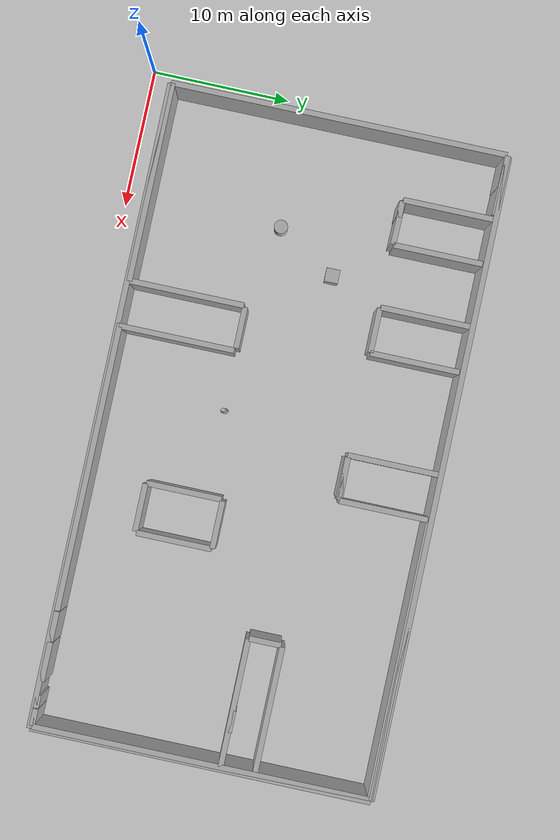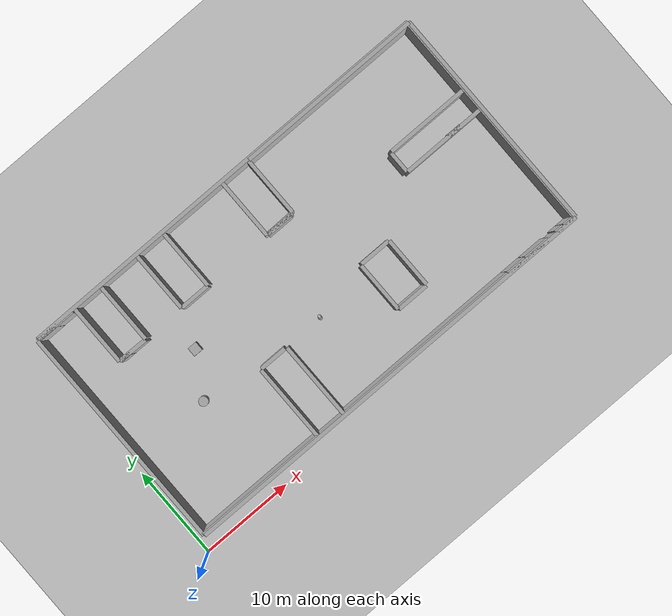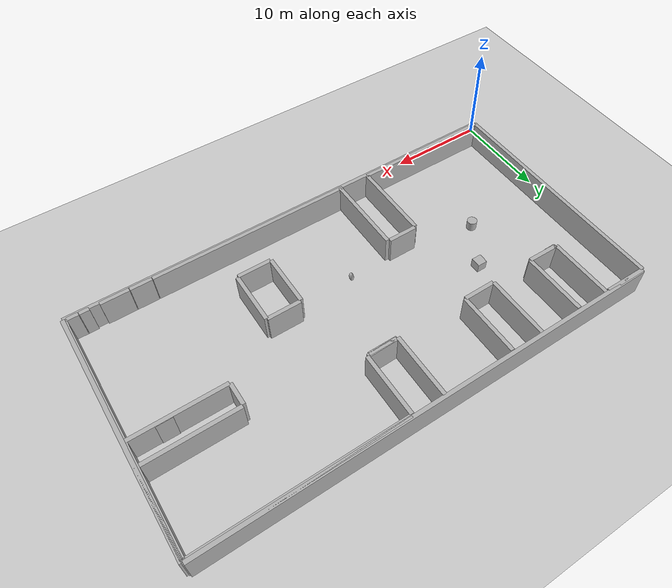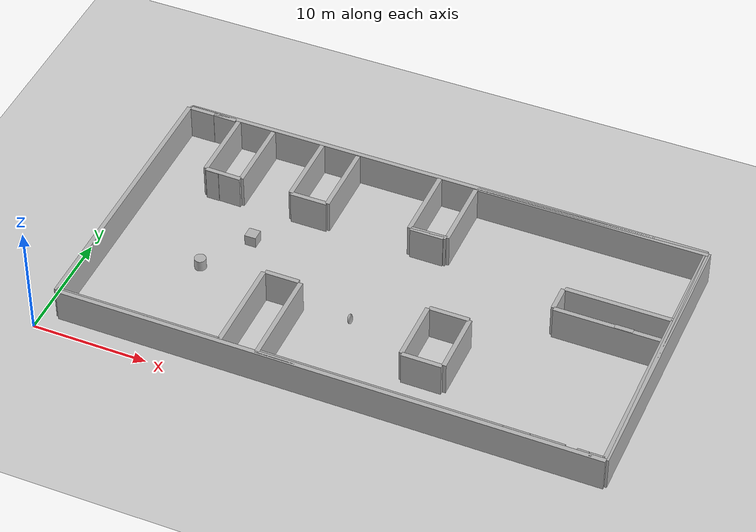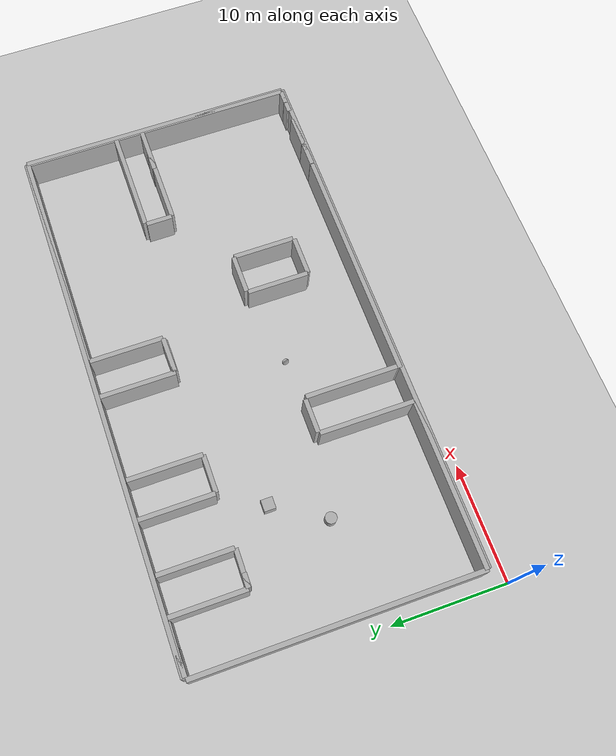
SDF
<?xml version="1.0" ?>
<sdf version="1.6">
  <world name="final_scenario">
     <plugin name='ignition::gazebo::systems::Physics' filename='ignition-gazebo-physics-system'/>
   <plugin name='ignition::gazebo::systems::Sensors' filename='ignition-gazebo-sensors-system'>
     <render_engine>ogre2</render_engine>
   </plugin>
   <plugin name='ignition::gazebo::systems::UserCommands' filename='ignition-gazebo-user-commands-system'/>
   <plugin name='ignition::gazebo::systems::SceneBroadcaster' filename='ignition-gazebo-scene-broadcaster-system'/>
    <gravity>0 0 -9.8</gravity>
    <magnetic_field>6e-06 2.3e-05 -4.2e-05</magnetic_field>
    <atmosphere type='adiabatic'/>
    <physics type='ode'>
      <max_step_size>0.01</max_step_size>
      <real_time_factor>1.0</real_time_factor>
      <real_time_update_rate>1000</real_time_update_rate>
    </physics>
    <scene>
      <ambient>0.4 0.4 0.4 1</ambient>
      <background>0.7 0.7 0.7 1</background>
      <shadows>true</shadows>
    </scene>
    <light name="sun" type="directional">
      <pose>0 0 10 0 0 0</pose>
      <diffuse>0.8 0.8 0.8 1</diffuse>
      <direction>-0.5 0.1 -0.9</direction>
    </light>
    <model name="ground_plane">
      <static>true</static>
      <link name="link">
        <collision name="collision">
          <geometry>
            <plane>
              <normal>0 0 1</normal>
              <size>100 100</size>
            </plane>
          </geometry>
        </collision>
        <visual name="visual">
          <geometry>
            <plane>
              <normal>0 0 1</normal>
              <size>100 100</size>
            </plane>
          </geometry>
          <material>
            <ambient>0.8 0.8 0.8 1</ambient>
            <diffuse>0.8 0.8 0.8 1</diffuse>
            <specular>0.8 0.8 0.8 1</specular>
          </material>
        </visual>
      </link>
    </model>
    <model name='wall_0'>
      <static>true</static>
      <pose>24.575 1.75 1.5 0 -0 0</pose>
      <link name='link'>
        <collision name='collision'>
          <geometry>
            <box>
              <size>46.35 0.4 3</size>
            </box>
          </geometry>
          <surface>
            <friction>
              <ode/>
            </friction>
            <bounce/>
            <contact/>
          </surface>
        </collision>
        <visual name='visual'>
          <geometry>
            <box>
              <size>46.35 0.4 3</size>
            </box>
          </geometry>
          <material>
            <ambient>0.5 0.5 0.5 1</ambient>
            <diffuse>0.7 0.7 0.7 1</diffuse>
          </material>
        </visual>
        <pose>0 0 0 0 -0 0</pose>
        <inertial>
          <pose>0 0 0 0 -0 0</pose>
          <mass>1</mass>
          <inertia>
            <ixx>1</ixx>
            <ixy>0</ixy>
            <ixz>0</ixz>
            <iyy>1</iyy>
            <iyz>0</iyz>
            <izz>1</izz>
          </inertia>
        </inertial>
        <enable_wind>false</enable_wind>
      </link>
      <self_collide>false</self_collide>
    </model>
    <model name='wall_1'>
      <static>true</static>
      <pose>8.5 1.9 1.5 0 -0 0</pose>
      <link name='link'>
        <collision name='collision'>
          <geometry>
            <box>
              <size>14.3 0.4 3</size>
            </box>
          </geometry>
          <surface>
            <friction>
              <ode/>
            </friction>
            <bounce/>
            <contact/>
          </surface>
        </collision>
        <visual name='visual'>
          <geometry>
            <box>
              <size>14.3 0.4 3</size>
            </box>
          </geometry>
          <material>
            <ambient>0.5 0.5 0.5 1</ambient>
            <diffuse>0.7 0.7 0.7 1</diffuse>
          </material>
        </visual>
        <pose>0 0 0 0 -0 0</pose>
        <inertial>
          <pose>0 0 0 0 -0 0</pose>
          <mass>1</mass>
          <inertia>
            <ixx>1</ixx>
            <ixy>0</ixy>
            <ixz>0</ixz>
            <iyy>1</iyy>
            <iyz>0</iyz>
            <izz>1</izz>
          </inertia>
        </inertial>
        <enable_wind>false</enable_wind>
      </link>
      <self_collide>false</self_collide>
    </model>
    <model name='wall_2'>
      <static>true</static>
      <pose>37.75 26.05 1.5 0 -0 0</pose>
      <link name='link'>
        <collision name='collision'>
          <geometry>
            <box>
              <size>20 0.4 3</size>
            </box>
          </geometry>
          <surface>
            <friction>
              <ode/>
            </friction>
            <bounce/>
            <contact/>
          </surface>
        </collision>
        <visual name='visual'>
          <geometry>
            <box>
              <size>20 0.4 3</size>
            </box>
          </geometry>
          <material>
            <ambient>0.5 0.5 0.5 1</ambient>
            <diffuse>0.7 0.7 0.7 1</diffuse>
          </material>
        </visual>
        <pose>0 0 0 0 -0 0</pose>
        <inertial>
          <pose>0 0 0 0 -0 0</pose>
          <mass>1</mass>
          <inertia>
            <ixx>1</ixx>
            <ixy>0</ixy>
            <ixz>0</ixz>
            <iyy>1</iyy>
            <iyz>0</iyz>
            <izz>1</izz>
          </inertia>
        </inertial>
        <enable_wind>false</enable_wind>
      </link>
      <self_collide>false</self_collide>
    </model>
    <model name='wall_3'>
      <static>true</static>
      <pose>24.575 26.2 1.5 0 -0 0</pose>
      <link name='link'>
        <collision name='collision'>
          <geometry>
            <box>
              <size>46.15 0.4 3</size>
            </box>
          </geometry>
          <surface>
            <friction>
              <ode/>
            </friction>
            <bounce/>
            <contact/>
          </surface>
        </collision>
        <visual name='visual'>
          <geometry>
            <box>
              <size>46.15 0.4 3</size>
            </box>
          </geometry>
          <material>
            <ambient>0.5 0.5 0.5 1</ambient>
            <diffuse>0.7 0.7 0.7 1</diffuse>
          </material>
        </visual>
        <pose>0 0 0 0 -0 0</pose>
        <inertial>
          <pose>0 0 0 0 -0 0</pose>
          <mass>1</mass>
          <inertia>
            <ixx>1</ixx>
            <ixy>0</ixy>
            <ixz>0</ixz>
            <iyy>1</iyy>
            <iyz>0</iyz>
            <izz>1</izz>
          </inertia>
        </inertial>
        <enable_wind>false</enable_wind>
      </link>
      <self_collide>false</self_collide>
    </model>
    <model name='wall_4'>
      <static>true</static>
      <pose>47.75 13.975 1.5 0 -0 1.5708</pose>
      <link name='link'>
        <collision name='collision'>
          <geometry>
            <box>
              <size>24.35 0.4 3</size>
            </box>
          </geometry>
          <surface>
            <friction>
              <ode/>
            </friction>
            <bounce/>
            <contact/>
          </surface>
        </collision>
        <visual name='visual'>
          <geometry>
            <box>
              <size>24.35 0.4 3</size>
            </box>
          </geometry>
          <material>
            <ambient>0.5 0.5 0.5 1</ambient>
            <diffuse>0.7 0.7 0.7 1</diffuse>
          </material>
        </visual>
        <pose>0 0 0 0 -0 0</pose>
        <inertial>
          <pose>0 0 0 0 -0 0</pose>
          <mass>1</mass>
          <inertia>
            <ixx>1</ixx>
            <ixy>0</ixy>
            <ixz>0</ixz>
            <iyy>1</iyy>
            <iyz>0</iyz>
            <izz>1</izz>
          </inertia>
        </inertial>
        <enable_wind>false</enable_wind>
      </link>
      <self_collide>false</self_collide>
    </model>
    <model name='wall_5'>
      <static>true</static>
      <pose>1.35 13.925 1.5 0 -0 1.5708</pose>
      <link name='link'>
        <collision name='collision'>
          <geometry>
            <box>
              <size>24.25 0.4 3</size>
            </box>
          </geometry>
          <surface>
            <friction>
              <ode/>
            </friction>
            <bounce/>
            <contact/>
          </surface>
        </collision>
        <visual name='visual'>
          <geometry>
            <box>
              <size>24.25 0.4 3</size>
            </box>
          </geometry>
          <material>
            <ambient>0.5 0.5 0.5 1</ambient>
            <diffuse>0.7 0.7 0.7 1</diffuse>
          </material>
        </visual>
        <pose>0 0 0 0 -0 0</pose>
        <inertial>
          <pose>0 0 0 0 -0 0</pose>
          <mass>1</mass>
          <inertia>
            <ixx>1</ixx>
            <ixy>0</ixy>
            <ixz>0</ixz>
            <iyy>1</iyy>
            <iyz>0</iyz>
            <izz>1</izz>
          </inertia>
        </inertial>
        <enable_wind>false</enable_wind>
      </link>
      <self_collide>false</self_collide>
    </model>
    <model name='wall_6'>
      <static>true</static>
      <pose>47.6 13.95 1.5 0 -0 1.5708</pose>
      <link name='link'>
        <collision name='collision'>
          <geometry>
            <box>
              <size>24.1 0.4 3</size>
            </box>
          </geometry>
          <surface>
            <friction>
              <ode/>
            </friction>
            <bounce/>
            <contact/>
          </surface>
        </collision>
        <visual name='visual'>
          <geometry>
            <box>
              <size>24.1 0.4 3</size>
            </box>
          </geometry>
          <material>
            <ambient>0.5 0.5 0.5 1</ambient>
            <diffuse>0.7 0.7 0.7 1</diffuse>
          </material>
        </visual>
        <pose>0 0 0 0 -0 0</pose>
        <inertial>
          <pose>0 0 0 0 -0 0</pose>
          <mass>1</mass>
          <inertia>
            <ixx>1</ixx>
            <ixy>0</ixy>
            <ixz>0</ixz>
            <iyy>1</iyy>
            <iyz>0</iyz>
            <izz>1</izz>
          </inertia>
        </inertial>
        <enable_wind>false</enable_wind>
      </link>
      <self_collide>false</self_collide>
    </model>
    <model name='wall_7'>
      <static>true</static>
      <pose>27.65 22.775 1.5 0 -0 1.5708</pose>
      <link name='link'>
        <collision name='collision'>
          <geometry>
            <box>
              <size>6.35 0.4 3</size>
            </box>
          </geometry>
          <surface>
            <friction>
              <ode/>
            </friction>
            <bounce/>
            <contact/>
          </surface>
        </collision>
        <visual name='visual'>
          <geometry>
            <box>
              <size>6.35 0.4 3</size>
            </box>
          </geometry>
          <material>
            <ambient>0.5 0.5 0.5 1</ambient>
            <diffuse>0.7 0.7 0.7 1</diffuse>
          </material>
        </visual>
        <pose>0 0 0 0 -0 0</pose>
        <inertial>
          <pose>0 0 0 0 -0 0</pose>
          <mass>1</mass>
          <inertia>
            <ixx>1</ixx>
            <ixy>0</ixy>
            <ixz>0</ixz>
            <iyy>1</iyy>
            <iyz>0</iyz>
            <izz>1</izz>
          </inertia>
        </inertial>
        <enable_wind>false</enable_wind>
      </link>
      <self_collide>false</self_collide>
    </model>
    <model name='wall_8'>
      <static>true</static>
      <pose>15.65 6.05 1.5 0 -0 1.5708</pose>
      <link name='link'>
        <collision name='collision'>
          <geometry>
            <box>
              <size>8.2 0.4 3</size>
            </box>
          </geometry>
          <surface>
            <friction>
              <ode/>
            </friction>
            <bounce/>
            <contact/>
          </surface>
        </collision>
        <visual name='visual'>
          <geometry>
            <box>
              <size>8.2 0.4 3</size>
            </box>
          </geometry>
          <material>
            <ambient>0.5 0.5 0.5 1</ambient>
            <diffuse>0.7 0.7 0.7 1</diffuse>
          </material>
        </visual>
        <pose>0 0 0 0 -0 0</pose>
        <inertial>
          <pose>0 0 0 0 -0 0</pose>
          <mass>1</mass>
          <inertia>
            <ixx>1</ixx>
            <ixy>0</ixy>
            <ixz>0</ixz>
            <iyy>1</iyy>
            <iyz>0</iyz>
            <izz>1</izz>
          </inertia>
        </inertial>
        <enable_wind>false</enable_wind>
      </link>
      <self_collide>false</self_collide>
    </model>
    <model name='wall_9'>
      <static>true</static>
      <pose>18.9 6 1.5 0 -0 1.5708</pose>
      <link name='link'>
        <collision name='collision'>
          <geometry>
            <box>
              <size>8.3 0.4 3</size>
            </box>
          </geometry>
          <surface>
            <friction>
              <ode/>
            </friction>
            <bounce/>
            <contact/>
          </surface>
        </collision>
        <visual name='visual'>
          <geometry>
            <box>
              <size>8.3 0.4 3</size>
            </box>
          </geometry>
          <material>
            <ambient>0.5 0.5 0.5 1</ambient>
            <diffuse>0.7 0.7 0.7 1</diffuse>
          </material>
        </visual>
        <pose>0 0 0 0 -0 0</pose>
        <inertial>
          <pose>0 0 0 0 -0 0</pose>
          <mass>1</mass>
          <inertia>
            <ixx>1</ixx>
            <ixy>0</ixy>
            <ixz>0</ixz>
            <iyy>1</iyy>
            <iyz>0</iyz>
            <izz>1</izz>
          </inertia>
        </inertial>
        <enable_wind>false</enable_wind>
      </link>
      <self_collide>false</self_collide>
    </model>
    <model name='wall_10'>
      <static>true</static>
      <pose>24.4 22.775 1.5 0 -0 1.5708</pose>
      <link name='link'>
        <collision name='collision'>
          <geometry>
            <box>
              <size>6.55 0.4 3</size>
            </box>
          </geometry>
          <surface>
            <friction>
              <ode/>
            </friction>
            <bounce/>
            <contact/>
          </surface>
        </collision>
        <visual name='visual'>
          <geometry>
            <box>
              <size>6.55 0.4 3</size>
            </box>
          </geometry>
          <material>
            <ambient>0.5 0.5 0.5 1</ambient>
            <diffuse>0.7 0.7 0.7 1</diffuse>
          </material>
        </visual>
        <pose>0 0 0 0 -0 0</pose>
        <inertial>
          <pose>0 0 0 0 -0 0</pose>
          <mass>1</mass>
          <inertia>
            <ixx>1</ixx>
            <ixy>0</ixy>
            <ixz>0</ixz>
            <iyy>1</iyy>
            <iyz>0</iyz>
            <izz>1</izz>
          </inertia>
        </inertial>
        <enable_wind>false</enable_wind>
      </link>
      <self_collide>false</self_collide>
    </model>
    <model name='wall_11'>
      <static>true</static>
      <pose>6 22.775 1.5 0 -0 1.5708</pose>
      <link name='link'>
        <collision name='collision'>
          <geometry>
            <box>
              <size>6.45 0.4 3</size>
            </box>
          </geometry>
          <surface>
            <friction>
              <ode/>
            </friction>
            <bounce/>
            <contact/>
          </surface>
        </collision>
        <visual name='visual'>
          <geometry>
            <box>
              <size>6.45 0.4 3</size>
            </box>
          </geometry>
          <material>
            <ambient>0.5 0.5 0.5 1</ambient>
            <diffuse>0.7 0.7 0.7 1</diffuse>
          </material>
        </visual>
        <pose>0 0 0 0 -0 0</pose>
        <inertial>
          <pose>0 0 0 0 -0 0</pose>
          <mass>1</mass>
          <inertia>
            <ixx>1</ixx>
            <ixy>0</ixy>
            <ixz>0</ixz>
            <iyy>1</iyy>
            <iyz>0</iyz>
            <izz>1</izz>
          </inertia>
        </inertial>
        <enable_wind>false</enable_wind>
      </link>
      <self_collide>false</self_collide>
    </model>
    <model name='wall_12'>
      <static>true</static>
      <pose>13.75 22.8 1.5 0 -0 1.5708</pose>
      <link name='link'>
        <collision name='collision'>
          <geometry>
            <box>
              <size>6.4 0.4 3</size>
            </box>
          </geometry>
          <surface>
            <friction>
              <ode/>
            </friction>
            <bounce/>
            <contact/>
          </surface>
        </collision>
        <visual name='visual'>
          <geometry>
            <box>
              <size>6.4 0.4 3</size>
            </box>
          </geometry>
          <material>
            <ambient>0.5 0.5 0.5 1</ambient>
            <diffuse>0.7 0.7 0.7 1</diffuse>
          </material>
        </visual>
        <pose>0 0 0 0 -0 0</pose>
        <inertial>
          <pose>0 0 0 0 -0 0</pose>
          <mass>1</mass>
          <inertia>
            <ixx>1</ixx>
            <ixy>0</ixy>
            <ixz>0</ixz>
            <iyy>1</iyy>
            <iyz>0</iyz>
            <izz>1</izz>
          </inertia>
        </inertial>
        <enable_wind>false</enable_wind>
      </link>
      <self_collide>false</self_collide>
    </model>
    <model name='wall_13'>
      <static>true</static>
      <pose>29.3 8.8 1.5 0 -0 1.5708</pose>
      <link name='link'>
        <collision name='collision'>
          <geometry>
            <box>
              <size>5.4 0.4 3</size>
            </box>
          </geometry>
          <surface>
            <friction>
              <ode/>
            </friction>
            <bounce/>
            <contact/>
          </surface>
        </collision>
        <visual name='visual'>
          <geometry>
            <box>
              <size>5.4 0.4 3</size>
            </box>
          </geometry>
          <material>
            <ambient>0.5 0.5 0.5 1</ambient>
            <diffuse>0.7 0.7 0.7 1</diffuse>
          </material>
        </visual>
        <pose>0 0 0 0 -0 0</pose>
        <inertial>
          <pose>0 0 0 0 -0 0</pose>
          <mass>1</mass>
          <inertia>
            <ixx>1</ixx>
            <ixy>0</ixy>
            <ixz>0</ixz>
            <iyy>1</iyy>
            <iyz>0</iyz>
            <izz>1</izz>
          </inertia>
        </inertial>
        <enable_wind>false</enable_wind>
      </link>
      <self_collide>false</self_collide>
    </model>
    <model name='wall_14'>
      <static>true</static>
      <pose>43.025 17.85 1.5 0 -0 0</pose>
      <link name='link'>
        <collision name='collision'>
          <geometry>
            <box>
              <size>9.05 0.4 3</size>
            </box>
          </geometry>
          <surface>
            <friction>
              <ode/>
            </friction>
            <bounce/>
            <contact/>
          </surface>
        </collision>
        <visual name='visual'>
          <geometry>
            <box>
              <size>9.05 0.4 3</size>
            </box>
          </geometry>
          <material>
            <ambient>0.5 0.5 0.5 1</ambient>
            <diffuse>0.7 0.7 0.7 1</diffuse>
          </material>
        </visual>
        <pose>0 0 0 0 -0 0</pose>
        <inertial>
          <pose>0 0 0 0 -0 0</pose>
          <mass>1</mass>
          <inertia>
            <ixx>1</ixx>
            <ixy>0</ixy>
            <ixz>0</ixz>
            <iyy>1</iyy>
            <iyz>0</iyz>
            <izz>1</izz>
          </inertia>
        </inertial>
        <enable_wind>false</enable_wind>
      </link>
      <self_collide>false</self_collide>
    </model>
    <model name='wall_15'>
      <static>true</static>
      <pose>43 15.4 1.5 0 -0 0</pose>
      <link name='link'>
        <collision name='collision'>
          <geometry>
            <box>
              <size>9.1 0.4 3</size>
            </box>
          </geometry>
          <surface>
            <friction>
              <ode/>
            </friction>
            <bounce/>
            <contact/>
          </surface>
        </collision>
        <visual name='visual'>
          <geometry>
            <box>
              <size>9.1 0.4 3</size>
            </box>
          </geometry>
          <material>
            <ambient>0.5 0.5 0.5 1</ambient>
            <diffuse>0.7 0.7 0.7 1</diffuse>
          </material>
        </visual>
        <pose>0 0 0 0 -0 0</pose>
        <inertial>
          <pose>0 0 0 0 -0 0</pose>
          <mass>1</mass>
          <inertia>
            <ixx>1</ixx>
            <ixy>0</ixy>
            <ixz>0</ixz>
            <iyy>1</iyy>
            <iyz>0</iyz>
            <izz>1</izz>
          </inertia>
        </inertial>
        <enable_wind>false</enable_wind>
      </link>
      <self_collide>false</self_collide>
    </model>
    <model name='wall_16'>
      <static>true</static>
      <pose>17.05 22.75 1.5 0 -0 1.5708</pose>
      <link name='link'>
        <collision name='collision'>
          <geometry>
            <box>
              <size>6.4 0.4 3</size>
            </box>
          </geometry>
          <surface>
            <friction>
              <ode/>
            </friction>
            <bounce/>
            <contact/>
          </surface>
        </collision>
        <visual name='visual'>
          <geometry>
            <box>
              <size>6.4 0.4 3</size>
            </box>
          </geometry>
          <material>
            <ambient>0.5 0.5 0.5 1</ambient>
            <diffuse>0.7 0.7 0.7 1</diffuse>
          </material>
        </visual>
        <pose>0 0 0 0 -0 0</pose>
        <inertial>
          <pose>0 0 0 0 -0 0</pose>
          <mass>1</mass>
          <inertia>
            <ixx>1</ixx>
            <ixy>0</ixy>
            <ixz>0</ixz>
            <iyy>1</iyy>
            <iyz>0</iyz>
            <izz>1</izz>
          </inertia>
        </inertial>
        <enable_wind>false</enable_wind>
      </link>
      <self_collide>false</self_collide>
    </model>
    <model name='wall_17'>
      <static>true</static>
      <pose>9.25 22.75 1.5 0 -0 1.5708</pose>
      <link name='link'>
        <collision name='collision'>
          <geometry>
            <box>
              <size>6.4 0.4 3</size>
            </box>
          </geometry>
          <surface>
            <friction>
              <ode/>
            </friction>
            <bounce/>
            <contact/>
          </surface>
        </collision>
        <visual name='visual'>
          <geometry>
            <box>
              <size>6.4 0.4 3</size>
            </box>
          </geometry>
          <material>
            <ambient>0.5 0.5 0.5 1</ambient>
            <diffuse>0.7 0.7 0.7 1</diffuse>
          </material>
        </visual>
        <pose>0 0 0 0 -0 0</pose>
        <inertial>
          <pose>0 0 0 0 -0 0</pose>
          <mass>1</mass>
          <inertia>
            <ixx>1</ixx>
            <ixy>0</ixy>
            <ixz>0</ixz>
            <iyy>1</iyy>
            <iyz>0</iyz>
            <izz>1</izz>
          </inertia>
        </inertial>
        <enable_wind>false</enable_wind>
      </link>
      <self_collide>false</self_collide>
    </model>
    <model name='wall_18'>
      <static>true</static>
      <pose>32.85 8.85 1.5 0 -0 1.5708</pose>
      <link name='link'>
        <collision name='collision'>
          <geometry>
            <box>
              <size>5.4 0.4 3</size>
            </box>
          </geometry>
          <surface>
            <friction>
              <ode/>
            </friction>
            <bounce/>
            <contact/>
          </surface>
        </collision>
        <visual name='visual'>
          <geometry>
            <box>
              <size>5.4 0.4 3</size>
            </box>
          </geometry>
          <material>
            <ambient>0.5 0.5 0.5 1</ambient>
            <diffuse>0.7 0.7 0.7 1</diffuse>
          </material>
        </visual>
        <pose>0 0 0 0 -0 0</pose>
        <inertial>
          <pose>0 0 0 0 -0 0</pose>
          <mass>1</mass>
          <inertia>
            <ixx>1</ixx>
            <ixy>0</ixy>
            <ixz>0</ixz>
            <iyy>1</iyy>
            <iyz>0</iyz>
            <izz>1</izz>
          </inertia>
        </inertial>
        <enable_wind>false</enable_wind>
      </link>
      <self_collide>false</self_collide>
    </model>
    <model name='wall_19'>
      <static>true</static>
      <pose>38.4 16.6 1.5 0 -0 1.5708</pose>
      <link name='link'>
        <collision name='collision'>
          <geometry>
            <box>
              <size>2.3 0.4 3</size>
            </box>
          </geometry>
          <surface>
            <friction>
              <ode/>
            </friction>
            <bounce/>
            <contact/>
          </surface>
        </collision>
        <visual name='visual'>
          <geometry>
            <box>
              <size>2.3 0.4 3</size>
            </box>
          </geometry>
          <material>
            <ambient>0.5 0.5 0.5 1</ambient>
            <diffuse>0.7 0.7 0.7 1</diffuse>
          </material>
        </visual>
        <pose>0 0 0 0 -0 0</pose>
        <inertial>
          <pose>0 0 0 0 -0 0</pose>
          <mass>1</mass>
          <inertia>
            <ixx>1</ixx>
            <ixy>0</ixy>
            <ixz>0</ixz>
            <iyy>1</iyy>
            <iyz>0</iyz>
            <izz>1</izz>
          </inertia>
        </inertial>
        <enable_wind>false</enable_wind>
      </link>
      <self_collide>false</self_collide>
    </model>
    <model name='wall_20'>
      <static>true</static>
      <pose>31.05 6.05 1.5 0 -0 0</pose>
      <link name='link'>
        <collision name='collision'>
          <geometry>
            <box>
              <size>3.4 0.4 3</size>
            </box>
          </geometry>
          <surface>
            <friction>
              <ode/>
            </friction>
            <bounce/>
            <contact/>
          </surface>
        </collision>
        <visual name='visual'>
          <geometry>
            <box>
              <size>3.4 0.4 3</size>
            </box>
          </geometry>
          <material>
            <ambient>0.5 0.5 0.5 1</ambient>
            <diffuse>0.7 0.7 0.7 1</diffuse>
          </material>
        </visual>
        <pose>0 0 0 0 -0 0</pose>
        <inertial>
          <pose>0 0 0 0 -0 0</pose>
          <mass>1</mass>
          <inertia>
            <ixx>1</ixx>
            <ixy>0</ixy>
            <ixz>0</ixz>
            <iyy>1</iyy>
            <iyz>0</iyz>
            <izz>1</izz>
          </inertia>
        </inertial>
        <enable_wind>false</enable_wind>
      </link>
      <self_collide>false</self_collide>
    </model>
    <model name='wall_21'>
      <static>true</static>
      <pose>25.95 19.5 1.5 0 -0 0</pose>
      <link name='link'>
        <collision name='collision'>
          <geometry>
            <box>
              <size>2.9 0.4 3</size>
            </box>
          </geometry>
          <surface>
            <friction>
              <ode/>
            </friction>
            <bounce/>
            <contact/>
          </surface>
        </collision>
        <visual name='visual'>
          <geometry>
            <box>
              <size>2.9 0.4 3</size>
            </box>
          </geometry>
          <material>
            <ambient>0.5 0.5 0.5 1</ambient>
            <diffuse>0.7 0.7 0.7 1</diffuse>
          </material>
        </visual>
        <pose>0 0 0 0 -0 0</pose>
        <inertial>
          <pose>0 0 0 0 -0 0</pose>
          <mass>1</mass>
          <inertia>
            <ixx>1</ixx>
            <ixy>0</ixy>
            <ixz>0</ixz>
            <iyy>1</iyy>
            <iyz>0</iyz>
            <izz>1</izz>
          </inertia>
        </inertial>
        <enable_wind>false</enable_wind>
      </link>
      <self_collide>false</self_collide>
    </model>
    <model name='wall_22'>
      <static>true</static>
      <pose>15.4 19.55 1.5 0 -0 0</pose>
      <link name='link'>
        <collision name='collision'>
          <geometry>
            <box>
              <size>3.2 0.4 3</size>
            </box>
          </geometry>
          <surface>
            <friction>
              <ode/>
            </friction>
            <bounce/>
            <contact/>
          </surface>
        </collision>
        <visual name='visual'>
          <geometry>
            <box>
              <size>3.2 0.4 3</size>
            </box>
          </geometry>
          <material>
            <ambient>0.5 0.5 0.5 1</ambient>
            <diffuse>0.7 0.7 0.7 1</diffuse>
          </material>
        </visual>
        <pose>0 0 0 0 -0 0</pose>
        <inertial>
          <pose>0 0 0 0 -0 0</pose>
          <mass>1</mass>
          <inertia>
            <ixx>1</ixx>
            <ixy>0</ixy>
            <ixz>0</ixz>
            <iyy>1</iyy>
            <iyz>0</iyz>
            <izz>1</izz>
          </inertia>
        </inertial>
        <enable_wind>false</enable_wind>
      </link>
      <self_collide>false</self_collide>
    </model>
    <model name='wall_23'>
      <static>true</static>
      <pose>43 1.9 1.5 0 -0 0</pose>
      <link name='link'>
        <collision name='collision'>
          <geometry>
            <box>
              <size>2.8 0.4 3</size>
            </box>
          </geometry>
          <surface>
            <friction>
              <ode/>
            </friction>
            <bounce/>
            <contact/>
          </surface>
        </collision>
        <visual name='visual'>
          <geometry>
            <box>
              <size>2.8 0.4 3</size>
            </box>
          </geometry>
          <material>
            <ambient>0.5 0.5 0.5 1</ambient>
            <diffuse>0.7 0.7 0.7 1</diffuse>
          </material>
        </visual>
        <pose>0 0 0 0 -0 0</pose>
        <inertial>
          <pose>0 0 0 0 -0 0</pose>
          <mass>1</mass>
          <inertia>
            <ixx>1</ixx>
            <ixy>0</ixy>
            <ixz>0</ixz>
            <iyy>1</iyy>
            <iyz>0</iyz>
            <izz>1</izz>
          </inertia>
        </inertial>
        <enable_wind>false</enable_wind>
      </link>
      <self_collide>false</self_collide>
    </model>
    <model name='wall_24'>
      <static>true</static>
      <pose>17.225 10.25 1.5 0 -0 0</pose>
      <link name='link'>
        <collision name='collision'>
          <geometry>
            <box>
              <size>2.95 0.4 3</size>
            </box>
          </geometry>
          <surface>
            <friction>
              <ode/>
            </friction>
            <bounce/>
            <contact/>
          </surface>
        </collision>
        <visual name='visual'>
          <geometry>
            <box>
              <size>2.95 0.4 3</size>
            </box>
          </geometry>
          <material>
            <ambient>0.5 0.5 0.5 1</ambient>
            <diffuse>0.7 0.7 0.7 1</diffuse>
          </material>
        </visual>
        <pose>0 0 0 0 -0 0</pose>
        <inertial>
          <pose>0 0 0 0 -0 0</pose>
          <mass>1</mass>
          <inertia>
            <ixx>1</ixx>
            <ixy>0</ixy>
            <ixz>0</ixz>
            <iyy>1</iyy>
            <iyz>0</iyz>
            <izz>1</izz>
          </inertia>
        </inertial>
        <enable_wind>false</enable_wind>
      </link>
      <self_collide>false</self_collide>
    </model>
    <model name='wall_25'>
      <static>true</static>
      <pose>31.1 11.6 1.5 0 -0 0</pose>
      <link name='link'>
        <collision name='collision'>
          <geometry>
            <box>
              <size>3.4 0.4 3</size>
            </box>
          </geometry>
          <surface>
            <friction>
              <ode/>
            </friction>
            <bounce/>
            <contact/>
          </surface>
        </collision>
        <visual name='visual'>
          <geometry>
            <box>
              <size>3.4 0.4 3</size>
            </box>
          </geometry>
          <material>
            <ambient>0.5 0.5 0.5 1</ambient>
            <diffuse>0.7 0.7 0.7 1</diffuse>
          </material>
        </visual>
        <pose>0 0 0 0 -0 0</pose>
        <inertial>
          <pose>0 0 0 0 -0 0</pose>
          <mass>1</mass>
          <inertia>
            <ixx>1</ixx>
            <ixy>0</ixy>
            <ixz>0</ixz>
            <iyy>1</iyy>
            <iyz>0</iyz>
            <izz>1</izz>
          </inertia>
        </inertial>
        <enable_wind>false</enable_wind>
      </link>
      <self_collide>false</self_collide>
    </model>
    <model name='wall_26'>
      <static>true</static>
      <pose>44.325 15.45 1.5 0 -0 0</pose>
      <link name='link'>
        <collision name='collision'>
          <geometry>
            <box>
              <size>1.55 0.4 3</size>
            </box>
          </geometry>
          <surface>
            <friction>
              <ode/>
            </friction>
            <bounce/>
            <contact/>
          </surface>
        </collision>
        <visual name='visual'>
          <geometry>
            <box>
              <size>1.55 0.4 3</size>
            </box>
          </geometry>
          <material>
            <ambient>0.5 0.5 0.5 1</ambient>
            <diffuse>0.7 0.7 0.7 1</diffuse>
          </material>
        </visual>
        <pose>0 0 0 0 -0 0</pose>
        <inertial>
          <pose>0 0 0 0 -0 0</pose>
          <mass>1</mass>
          <inertia>
            <ixx>1</ixx>
            <ixy>0</ixy>
            <ixz>0</ixz>
            <iyy>1</iyy>
            <iyz>0</iyz>
            <izz>1</izz>
          </inertia>
        </inertial>
        <enable_wind>false</enable_wind>
      </link>
      <self_collide>false</self_collide>
    </model>
    <model name='wall_27'>
      <static>true</static>
      <pose>46.95 1.9 1.5 0 -0 0</pose>
      <link name='link'>
        <collision name='collision'>
          <geometry>
            <box>
              <size>1.2 0.4 3</size>
            </box>
          </geometry>
          <surface>
            <friction>
              <ode/>
            </friction>
            <bounce/>
            <contact/>
          </surface>
        </collision>
        <visual name='visual'>
          <geometry>
            <box>
              <size>1.2 0.4 3</size>
            </box>
          </geometry>
          <material>
            <ambient>0.5 0.5 0.5 1</ambient>
            <diffuse>0.7 0.7 0.7 1</diffuse>
          </material>
        </visual>
        <pose>0 0 0 0 -0 0</pose>
        <inertial>
          <pose>0 0 0 0 -0 0</pose>
          <mass>1</mass>
          <inertia>
            <ixx>1</ixx>
            <ixy>0</ixy>
            <ixz>0</ixz>
            <iyy>1</iyy>
            <iyz>0</iyz>
            <izz>1</izz>
          </inertia>
        </inertial>
        <enable_wind>false</enable_wind>
      </link>
      <self_collide>false</self_collide>
    </model>
    <model name='wall_28'>
      <static>true</static>
      <pose>2.625 26.05 1.5 0 -0 0</pose>
      <link name='link'>
        <collision name='collision'>
          <geometry>
            <box>
              <size>2.15 0.4 3</size>
            </box>
          </geometry>
          <surface>
            <friction>
              <ode/>
            </friction>
            <bounce/>
            <contact/>
          </surface>
        </collision>
        <visual name='visual'>
          <geometry>
            <box>
              <size>2.15 0.4 3</size>
            </box>
          </geometry>
          <material>
            <ambient>0.5 0.5 0.5 1</ambient>
            <diffuse>0.7 0.7 0.7 1</diffuse>
          </material>
        </visual>
        <pose>0 0 0 0 -0 0</pose>
        <inertial>
          <pose>0 0 0 0 -0 0</pose>
          <mass>1</mass>
          <inertia>
            <ixx>1</ixx>
            <ixy>0</ixy>
            <ixz>0</ixz>
            <iyy>1</iyy>
            <iyz>0</iyz>
            <izz>1</izz>
          </inertia>
        </inertial>
        <enable_wind>false</enable_wind>
      </link>
      <self_collide>false</self_collide>
    </model>
    <model name='wall_29'>
      <static>true</static>
      <pose>7.625 19.525 1.5 0 0 -0.015872</pose>
      <link name='link'>
        <collision name='collision'>
          <geometry>
            <box>
              <size>3.1504 0.4 3</size>
            </box>
          </geometry>
          <surface>
            <friction>
              <ode/>
            </friction>
            <bounce/>
            <contact/>
          </surface>
        </collision>
        <visual name='visual'>
          <geometry>
            <box>
              <size>3.1504 0.4 3</size>
            </box>
          </geometry>
          <material>
            <ambient>0.5 0.5 0.5 1</ambient>
            <diffuse>0.7 0.7 0.7 1</diffuse>
          </material>
        </visual>
        <pose>0 0 0 0 -0 0</pose>
        <inertial>
          <pose>0 0 0 0 -0 0</pose>
          <mass>1</mass>
          <inertia>
            <ixx>1</ixx>
            <ixy>0</ixy>
            <ixz>0</ixz>
            <iyy>1</iyy>
            <iyz>0</iyz>
            <izz>1</izz>
          </inertia>
        </inertial>
        <enable_wind>false</enable_wind>
      </link>
      <self_collide>false</self_collide>
    </model>
    <model name='wall_30'>
      <static>true</static>
      <pose>3.55 26.075 1.5 0 0 -0.011627</pose>
      <link name='link'>
        <collision name='collision'>
          <geometry>
            <box>
              <size>4.30029 0.4 3</size>
            </box>
          </geometry>
          <surface>
            <friction>
              <ode/>
            </friction>
            <bounce/>
            <contact/>
          </surface>
        </collision>
        <visual name='visual'>
          <geometry>
            <box>
              <size>4.30029 0.4 3</size>
            </box>
          </geometry>
          <material>
            <ambient>0.5 0.5 0.5 1</ambient>
            <diffuse>0.7 0.7 0.7 1</diffuse>
          </material>
        </visual>
        <pose>0 0 0 0 -0 0</pose>
        <inertial>
          <pose>0 0 0 0 -0 0</pose>
          <mass>1</mass>
          <inertia>
            <ixx>1</ixx>
            <ixy>0</ixy>
            <ixz>0</ixz>
            <iyy>1</iyy>
            <iyz>0</iyz>
            <izz>1</izz>
          </inertia>
        </inertial>
        <enable_wind>false</enable_wind>
      </link>
      <self_collide>false</self_collide>
    </model>
    <model name='wall_31'>
      <static>true</static>
      <pose>6.675 19.5 1.5 0 -0 0</pose>
      <link name='link'>
        <collision name='collision'>
          <geometry>
            <box>
              <size>1.15 0.4 3</size>
            </box>
          </geometry>
          <surface>
            <friction>
              <ode/>
            </friction>
            <bounce/>
            <contact/>
          </surface>
        </collision>
        <visual name='visual'>
          <geometry>
            <box>
              <size>1.15 0.4 3</size>
            </box>
          </geometry>
          <material>
            <ambient>0.5 0.5 0.5 1</ambient>
            <diffuse>0.7 0.7 0.7 1</diffuse>
          </material>
        </visual>
        <pose>0 0 0 0 -0 0</pose>
        <inertial>
          <pose>0 0 0 0 -0 0</pose>
          <mass>1</mass>
          <inertia>
            <ixx>1</ixx>
            <ixy>0</ixy>
            <ixz>0</ixz>
            <iyy>1</iyy>
            <iyz>0</iyz>
            <izz>1</izz>
          </inertia>
        </inertial>
        <enable_wind>false</enable_wind>
      </link>
      <self_collide>false</self_collide>
    </model>
    <model name='wall_32'>
      <static>true</static>
      <pose>45.825 1.9 1.5 0 -0 0</pose>
      <link name='link'>
        <collision name='collision'>
          <geometry>
            <box>
              <size>0.95 0.4 3</size>
            </box>
          </geometry>
          <surface>
            <friction>
              <ode/>
            </friction>
            <bounce/>
            <contact/>
          </surface>
        </collision>
        <visual name='visual'>
          <geometry>
            <box>
              <size>0.95 0.4 3</size>
            </box>
          </geometry>
          <material>
            <ambient>0.5 0.5 0.5 1</ambient>
            <diffuse>0.7 0.7 0.7 1</diffuse>
          </material>
        </visual>
        <pose>0 0 0 0 -0 0</pose>
        <inertial>
          <pose>0 0 0 0 -0 0</pose>
          <mass>1</mass>
          <inertia>
            <ixx>1</ixx>
            <ixy>0</ixy>
            <ixz>0</ixz>
            <iyy>1</iyy>
            <iyz>0</iyz>
            <izz>1</izz>
          </inertia>
        </inertial>
        <enable_wind>false</enable_wind>
      </link>
      <self_collide>false</self_collide>
    </model>
    <model name='wall_33'>
      <static>true</static>
      <pose>40.475 1.9 1.5 0 -0 0</pose>
      <link name='link'>
        <collision name='collision'>
          <geometry>
            <box>
              <size>2.15 0.4 3</size>
            </box>
          </geometry>
          <surface>
            <friction>
              <ode/>
            </friction>
            <bounce/>
            <contact/>
          </surface>
        </collision>
        <visual name='visual'>
          <geometry>
            <box>
              <size>2.15 0.4 3</size>
            </box>
          </geometry>
          <material>
            <ambient>0.5 0.5 0.5 1</ambient>
            <diffuse>0.7 0.7 0.7 1</diffuse>
          </material>
        </visual>
        <pose>0 0 0 0 -0 0</pose>
        <inertial>
          <pose>0 0 0 0 -0 0</pose>
          <mass>1</mass>
          <inertia>
            <ixx>1</ixx>
            <ixy>0</ixy>
            <ixz>0</ixz>
            <iyy>1</iyy>
            <iyz>0</iyz>
            <izz>1</izz>
          </inertia>
        </inertial>
        <enable_wind>false</enable_wind>
      </link>
      <self_collide>false</self_collide>
    </model>
    <model name='wall_34'>
      <static>true</static>
      <pose>26.075 19.575 1.5 0 -0 0.016392</pose>
      <link name='link'>
        <collision name='collision'>
          <geometry>
            <box>
              <size>3.05041 0.4 3</size>
            </box>
          </geometry>
          <surface>
            <friction>
              <ode/>
            </friction>
            <bounce/>
            <contact/>
          </surface>
        </collision>
        <visual name='visual'>
          <geometry>
            <box>
              <size>3.05041 0.4 3</size>
            </box>
          </geometry>
          <material>
            <ambient>0.5 0.5 0.5 1</ambient>
            <diffuse>0.7 0.7 0.7 1</diffuse>
          </material>
        </visual>
        <pose>0 0 0 0 -0 0</pose>
        <inertial>
          <pose>0 0 0 0 -0 0</pose>
          <mass>1</mass>
          <inertia>
            <ixx>1</ixx>
            <ixy>0</ixy>
            <ixz>0</ixz>
            <iyy>1</iyy>
            <iyz>0</iyz>
            <izz>1</izz>
          </inertia>
        </inertial>
        <enable_wind>false</enable_wind>
      </link>
      <self_collide>false</self_collide>
    </model>
    <model name='wall_35'>
      <static>true</static>
      <pose>29.025 1.9 1.5 0 -0 0</pose>
      <link name='link'>
        <collision name='collision'>
          <geometry>
            <box>
              <size>20.65 0.4 3</size>
            </box>
          </geometry>
          <surface>
            <friction>
              <ode/>
            </friction>
            <bounce/>
            <contact/>
          </surface>
        </collision>
        <visual name='visual'>
          <geometry>
            <box>
              <size>20.65 0.4 3</size>
            </box>
          </geometry>
          <material>
            <ambient>0.5 0.5 0.5 1</ambient>
            <diffuse>0.7 0.7 0.7 1</diffuse>
          </material>
        </visual>
        <pose>0 0 0 0 -0 0</pose>
        <inertial>
          <pose>0 0 0 0 -0 0</pose>
          <mass>1</mass>
          <inertia>
            <ixx>1</ixx>
            <ixy>0</ixy>
            <ixz>0</ixz>
            <iyy>1</iyy>
            <iyz>0</iyz>
            <izz>1</izz>
          </inertia>
        </inertial>
        <enable_wind>false</enable_wind>
      </link>
      <self_collide>false</self_collide>
    </model>
    <model name='cylinder'>
      <pose>9.2863 11.4495 0.5 -0 0 0</pose>
      <link name='cylinder_link'>
        <inertial>
          <inertia>
            <ixx>0.14580000000000001</ixx>
            <ixy>0</ixy>
            <ixz>0</ixz>
            <iyy>0.14580000000000001</iyy>
            <iyz>0</iyz>
            <izz>0.125</izz>
          </inertia>
          <mass>1</mass>
          <pose>0 0 0 0 -0 0</pose>
        </inertial>
        <collision name='cylinder_collision'>
          <geometry>
            <cylinder>
              <radius>0.5</radius>
              <length>1</length>
            </cylinder>
          </geometry>
          <surface>
            <friction>
              <ode/>
            </friction>
            <bounce/>
            <contact/>
          </surface>
        </collision>
        <visual name='cylinder_visual'>
          <geometry>
            <cylinder>
              <radius>0.5</radius>
              <length>1</length>
            </cylinder>
          </geometry>
          <material>
            <ambient>0.3 0.3 0.3 1</ambient>
            <diffuse>0.7 0.7 0.7 1</diffuse>
            <specular>1 1 1 1</specular>
          </material>
        </visual>
        <pose>0 0 0 0 -0 0</pose>
        <enable_wind>false</enable_wind>
      </link>
      <static>false</static>
      <self_collide>false</self_collide>
    </model>
    <model name='box'>
      <pose>11.9636 15.8168 0.5 0 -0 0</pose>
      <link name='box_link'>
        <inertial>
          <inertia>
            <ixx>0.16666</ixx>
            <ixy>0</ixy>
            <ixz>0</ixz>
            <iyy>0.16666</iyy>
            <iyz>0</iyz>
            <izz>0.16666</izz>
          </inertia>
          <mass>1</mass>
          <pose>0 0 0 0 -0 0</pose>
        </inertial>
        <collision name='box_collision'>
          <geometry>
            <box>
              <size>1 1 1</size>
            </box>
          </geometry>
          <surface>
            <friction>
              <ode/>
            </friction>
            <bounce/>
            <contact/>
          </surface>
        </collision>
        <visual name='box_visual'>
          <geometry>
            <box>
              <size>1 1 1</size>
            </box>
          </geometry>
          <material>
            <ambient>0.3 0.3 0.3 1</ambient>
            <diffuse>0.7 0.7 0.7 1</diffuse>
            <specular>1 1 1 1</specular>
          </material>
        </visual>
        <pose>0 0 0 0 -0 0</pose>
        <enable_wind>false</enable_wind>
      </link>
      <static>false</static>
      <self_collide>false</self_collide>
    </model>
    <model name='ellipsoid'>
      <pose>23.1316 10.2711 0.499997 0.00048 -0.000633 -0</pose>
      <link name='ellipsoid_link'>
        <inertial>
          <inertia>
            <ixx>0.068000000000000005</ixx>
            <ixy>0</ixy>
            <ixz>0</ixz>
            <iyy>0.058000000000000003</iyy>
            <iyz>0</iyz>
            <izz>0.025999999999999999</izz>
          </inertia>
          <mass>1</mass>
          <pose>0 0 0 0 -0 0</pose>
        </inertial>
        <collision name='ellipsoid_collision'>
          <geometry>
            <ellipsoid>
              <radii>0.2 0.3 0.5</radii>
            </ellipsoid>
          </geometry>
          <surface>
            <friction>
              <ode/>
            </friction>
            <bounce/>
            <contact/>
          </surface>
        </collision>
        <visual name='ellipsoid_visual'>
          <geometry>
            <ellipsoid>
              <radii>0.2 0.3 0.5</radii>
            </ellipsoid>
          </geometry>
          <material>
            <ambient>0.3 0.3 0.3 1</ambient>
            <diffuse>0.7 0.7 0.7 1</diffuse>
            <specular>1 1 1 1</specular>
          </material>
        </visual>
        <pose>0 0 0 0 -0 0</pose>
        <enable_wind>false</enable_wind>
      </link>
      <static>false</static>
      <self_collide>false</self_collide>
    </model>
  </world>
</sdf>
